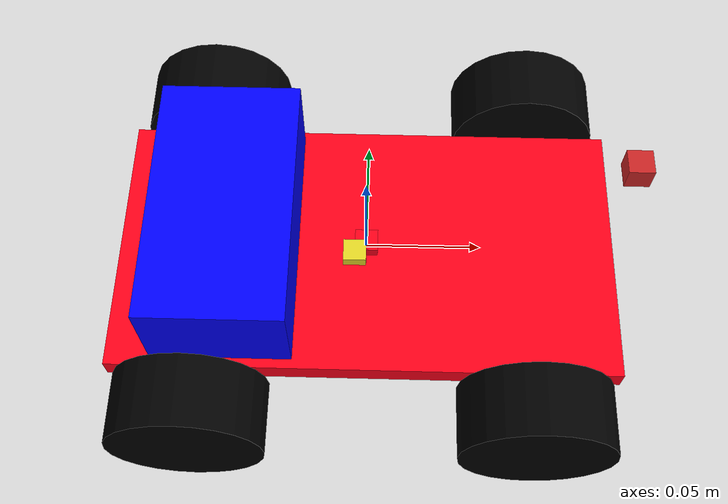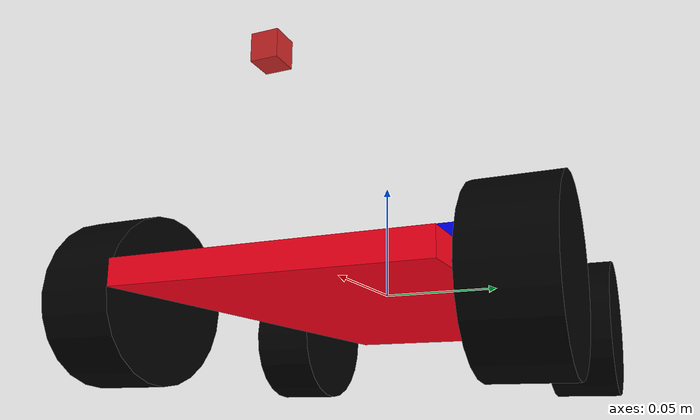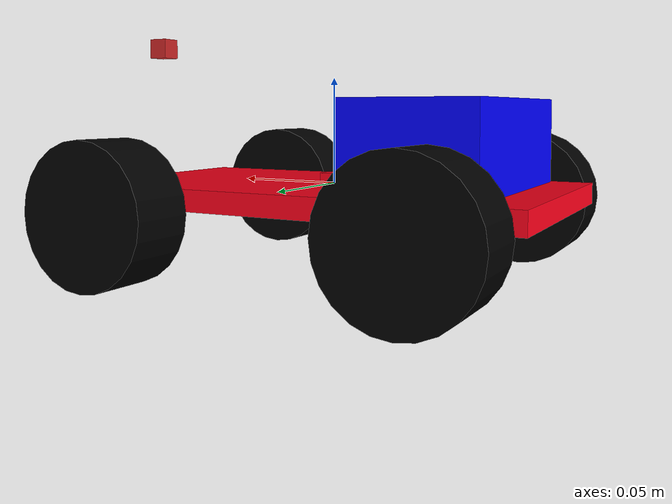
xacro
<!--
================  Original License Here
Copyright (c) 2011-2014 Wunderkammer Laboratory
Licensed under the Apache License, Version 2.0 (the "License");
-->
<?xml version="1.0"?>

<robot name="em_3905" xmlns:xacro="http://www.ros.org/wiki/xacro">
  <!-- Degree-to-radian conversions -->
  <xacro:property name="degrees_45" value="0.785398163"/>
  <xacro:property name="degrees_90" value="1.57079633"/>

  <!-- chassis_length is measured along the x axis, chassis_width
       along the y axis, and chassis_height along the z axis. -->
  <xacro:property name="chassis_length" value="0.218"/>
  <xacro:property name="chassis_width" value="0.118"/>
  <xacro:property name="chassis_height" value="0.01"/>
  <xacro:property name="chassis_mass" value="0.788"/>

  <xacro:property name="battery_x_offset" value="0.005"/>
  <xacro:property name="battery_dist" value="0.0"/>
  <xacro:property name="battery_comp_depth" value="0.0"/>
  <xacro:property name="battery_comp_angle" value="0.0"/>
  <xacro:property name="battery_length" value="0.06"/>
  <xacro:property name="battery_width" value="0.110"/>
  <xacro:property name="battery_height" value="0.04"/>
  <xacro:property name="battery_mass" value="0.0025"/>

  <xacro:property name="hub_dia" value="0.05652"/>
  <xacro:property name="tire_dia" value="0.06605"/>
  <xacro:property name="tire_width" value="0.03"/>
  <xacro:property name="hex_hub_depth" value="0.01445"/>
  <xacro:property name="wheel_mass" value="0.729"/>

  <xacro:property name="wheelbase" value="0.145"/>
  <xacro:property name="hex_hub_dist" value="0.155"/>
  <xacro:property name="axle_length" value="0.0"/>
  <xacro:property name="wheel_travel" value="0.000"/>
  <xacro:property name="shock_z_offset" value="0.01"/>

  <xacro:property name="shock_eff_limit" value="12.5106"/>
  <xacro:property name="shock_vel_limit" value="1000"/>

  <xacro:property name="axle_eff_limit" value="5.12766"/>
  <xacro:property name="axle_vel_limit" value="244.8696"/>

  <!-- These constants are used to simulate a Traxxas 2056 servo operated at
       6 V. servo_stall_torque is measured in N m. servo_no_load_speed is
       measured in rad/s. -->
  <xacro:property name="servo_stall_torque" value="0.5649"/>
  <xacro:property name="servo_no_load_speed" value="4.553"/>

  <!-- Property of IMU and camera -->
  <xacro:property name="imu_size" value="0.01"/>
  <xacro:property name="imu_height" value="0.01"/>

  <material name="battery_mat">
    <color rgba="0 0 1 1"/>
  </material>
  <material name="chassis_mat">
    <color rgba="1 0 0.1 1"/>
  </material>
  <material name="tire_mat">
    <color rgba="0 0 0 1"/>
  </material>

  <!-- Null inertial element. This is needed to make the model work with
       Gazebo. -->
  <xacro:macro name="null_inertial">
    <inertial>
      <mass value="0.001"/>
      <inertia ixx="0.001" ixy="0" ixz="0" iyy="0.001" iyz="0" izz="0.001"/>
    </inertial>
  </xacro:macro>

  <!-- Inertia of a solid cuboid. Width is measured along the x axis, depth
       along the y axis, and height along the z axis. -->
  <xacro:macro name="solid_cuboid_inertial"
               params="width depth height mass *origin">
    <inertial>
      <xacro:insert_block name="origin"/>
      <mass value="${mass}"/>
      <inertia ixx="${mass * (depth * depth + height * height) / 12}"
               ixy="0" ixz="0"
               iyy="${mass * (width * width + height * height) / 12}"
               iyz="0"
               izz="${mass * (width * width + depth * depth) / 12}"/>
    </inertial>
  </xacro:macro>

  <xacro:macro name="thick_walled_tube_inertial"
               params="inner_rad outer_rad height mass">
    <inertial>
      <mass value="${mass}"/>
      <inertia ixx="${(1 / 12) * mass * (3 * (inner_rad * inner_rad +
                    outer_rad * outer_rad) + height * height)}"
               ixy="0" ixz="0"
               iyy="${(1 / 12) * mass * (3 * (inner_rad * inner_rad +
                    outer_rad * outer_rad) + height * height)}"
               iyz="0"
               izz="${mass * (inner_rad * inner_rad +
                    outer_rad * outer_rad) / 2}"/>
    </inertial>
  </xacro:macro>

<!-- IMU -->
  <xacro:macro name="imu">
    <joint name="chassis_to_imu" type="fixed">
      <parent link="chassis"/>
      <child link="imu_link"/>
      <origin xyz="0
                   0
                   ${chassis_height / 2}"
              rpy="0 0 0"/>
    </joint>

    <link name="imu_link">
			<visual>
        <origin xyz="${-imu_size / 2} ${-imu_size / 2} ${-imu_height / 2}"/>
				<geometry>
				<box size="0.01 0.01 0.01"/>
				</geometry>
				<material name="yellow"/>
			</visual>

			<collision>
				<origin xyz="${-imu_size / 2} ${-imu_size / 2} ${imu_height / 2}"/>
				<geometry>
				<box size="0 0 0"/>
				</geometry>
			</collision>
    </link>
  </xacro:macro>

  <!-- Battery -->
  <xacro:macro name="battery" params="prefix reflect">
    <joint name="chassis_to_${prefix}_battery" type="fixed">
      <parent link="chassis"/>
      <child link="${prefix}_battery_offset"/>
      <origin xyz="${-battery_length }
                   ${-battery_width / 2}
                   0"
              rpy="${battery_comp_angle} 0 0"/>
    </joint>

    <link name="${prefix}_battery_offset">
      <xacro:null_inertial/>
    </link>

    <joint name="offset_to_${prefix}_battery" type="fixed">
      <parent link="${prefix}_battery_offset"/>
      <child link="${prefix}_battery"/>
      <origin xyz="0
                   ${ battery_width / 2}
                   ${(battery_height / 2) - battery_comp_depth}"/>
    </joint>

    <link name="${prefix}_battery">
      <visual>
        <geometry>
          <box size="${battery_length} ${battery_width} ${battery_height}"/>
        </geometry>
        <material name="battery_mat"/>
      </visual>

      <collision>
        <geometry>
          <box size="${battery_length} ${battery_width} ${battery_height}"/>
        </geometry>
      </collision>

      <xacro:solid_cuboid_inertial
         width="${battery_length}" depth="${battery_width}"
         height="${battery_height}" mass="${battery_mass}">
        <origin/>
      </xacro:solid_cuboid_inertial>
    </link>

    <gazebo reference="${prefix}_battery">
      <material>Gazebo/Blue</material>
    </gazebo>
  </xacro:macro>

  <!-- Shock absorber -->
  <xacro:macro name="shock"
               params="lr_prefix fr_prefix lr_reflect fr_reflect child">
    <joint name="${lr_prefix}_${fr_prefix}_shock" type="prismatic">
      <parent link="chassis"/>
      <child link="${child}"/>

      <origin xyz="${fr_reflect * wheelbase / 2}
                   ${lr_reflect * ((hex_hub_dist / 2) - axle_length)}
                   ${(wheel_travel / 2) - shock_z_offset}"/>
      <axis xyz="0 0 -1"/>
      <limit lower="${-wheel_travel / 2}" upper="${wheel_travel / 2}"
             effort="${shock_eff_limit}" velocity="${shock_vel_limit}"/>
    </joint>
    <transmission name="${lr_prefix}_${fr_prefix}_shock_trans">
      <type>transmission_interface/SimpleTransmission</type>
      <joint name="${lr_prefix}_${fr_prefix}_shock">
        <hardwareInterface>hardware_interface/EffortJointInterface</hardwareInterface>
      </joint>
      <actuator name="${lr_prefix}_${fr_prefix}_shock_act">
        <!-- This hardwareInterface element exists for compatibility
             with ROS Hydro. -->
        <hardwareInterface>hardware_interface/EffortJointInterface</hardwareInterface>
        <mechanicalReduction>1</mechanicalReduction>
      </actuator>
    </transmission>
  </xacro:macro>

  <!-- The "wheel" macro defines an axle carrier, axle, and wheel. -->
  <xacro:macro name="wheel" params="lr_prefix fr_prefix lr_reflect">
    <link name="${lr_prefix}_${fr_prefix}_axle_carrier">
      <xacro:null_inertial/>
    </link>

    <!-- The left and right axles have the same axis so that identical
         rotation values cause the wheels to rotate in the same direction. -->
    <joint name="${lr_prefix}_${fr_prefix}_axle" type="continuous">
      <parent link="${lr_prefix}_${fr_prefix}_axle_carrier"/>
      <child link="${lr_prefix}_${fr_prefix}_wheel"/>
      <origin rpy="${degrees_90} 0 0"/>
      <axis xyz="0 0 -1"/>
      <limit effort="${axle_eff_limit}" velocity="${axle_vel_limit}"/>
    </joint>
    <transmission name="${lr_prefix}_${fr_prefix}_axle_trans">
      <type>transmission_interface/SimpleTransmission</type>
      <joint name="${lr_prefix}_${fr_prefix}_axle">
        <hardwareInterface>hardware_interface/EffortJointInterface</hardwareInterface>
      </joint>
      <actuator name="${lr_prefix}_${fr_prefix}_axle_act">
        <!-- This hardwareInterface element exists for compatibility
             with ROS Hydro. -->
        <hardwareInterface>hardware_interface/EffortJointInterface</hardwareInterface>
        <mechanicalReduction>1</mechanicalReduction>
      </actuator>
    </transmission>

    <link name="${lr_prefix}_${fr_prefix}_wheel">
      <visual>
        <origin xyz="0
                     ${lr_reflect * (axle_length - (tire_width /
                     2 - hex_hub_depth))}
                     0"/>
        <geometry>
          <cylinder radius="${tire_dia / 2}" length="${tire_width}"/>
        </geometry>
        <material name="tire_mat"/>
      </visual>

      <collision>
        <origin xyz="0
                     ${lr_reflect * (axle_length - (tire_width /
                     2 - hex_hub_depth))}
                     0"/>
        <geometry>
          <cylinder radius="${tire_dia / 2}" length="${tire_width}"/>
        </geometry>
      </collision>

      <xacro:thick_walled_tube_inertial
          inner_rad="${hub_dia / 2}" outer_rad="${tire_dia / 2}"
          height="${tire_width}" mass="${wheel_mass}"/>
    </link>

    <gazebo reference="${lr_prefix}_${fr_prefix}_wheel">
      <material>Gazebo/Black</material>
    </gazebo>
  </xacro:macro>

  <!-- Front wheel -->
  <xacro:macro name="front_wheel"
               params="lr_prefix fr_prefix lr_reflect fr_reflect">
    <xacro:shock lr_prefix="${lr_prefix}" fr_prefix="${fr_prefix}"
                 lr_reflect="${lr_reflect}" fr_reflect="${fr_reflect}"
                 child="${lr_prefix}_steering_link"/>

    <link name="${lr_prefix}_steering_link">
      <xacro:null_inertial/>
    </link>

    <joint name="${lr_prefix}_steering_joint" type="revolute">
      <parent link="${lr_prefix}_steering_link"/>
      <child link="${lr_prefix}_${fr_prefix}_axle_carrier"/>
      <axis xyz="0 0 1"/>
      <limit lower="${-degrees_45}" upper="${degrees_45}"
             effort="${servo_stall_torque}" velocity="${servo_no_load_speed}"/>
    </joint>
    <transmission name="${lr_prefix}_steering_trans">
      <type>transmission_interface/SimpleTransmission</type>
      <joint name="${lr_prefix}_steering_joint">
        <hardwareInterface>hardware_interface/EffortJointInterface</hardwareInterface>
      </joint>
      <actuator name="${lr_prefix}_steering_act">
        <!-- This hardwareInterface element exists for compatibility
             with ROS Hydro. -->
        <hardwareInterface>hardware_interface/EffortJointInterface</hardwareInterface>
        <mechanicalReduction>1</mechanicalReduction>
      </actuator>
    </transmission>

    <xacro:wheel lr_prefix="${lr_prefix}" fr_prefix="${fr_prefix}"
                 lr_reflect="${lr_reflect}"/>
  </xacro:macro>

  <!-- Rear wheel -->
  <xacro:macro name="rear_wheel"
               params="lr_prefix fr_prefix lr_reflect fr_reflect">
    <xacro:shock lr_prefix="${lr_prefix}" fr_prefix="${fr_prefix}"
                 lr_reflect="${lr_reflect}" fr_reflect="${fr_reflect}"
                 child="${lr_prefix}_${fr_prefix}_axle_carrier"/>
    <xacro:wheel lr_prefix="${lr_prefix}" fr_prefix="${fr_prefix}"
                 lr_reflect="${lr_reflect}"/>
  </xacro:macro>

  <!-- base_link must have geometry so that its axes can be displayed in
       rviz. -->
  <link name="base_link">
    <inertial>
      <mass value="50" />
      <origin xyz="0 0 -1.25" />
      <inertia ixx="50.0" ixy="0.0" ixz="0.0"
        iyy="50.0" iyz="0.0"
        izz="50.0" />
    </inertial>
    <visual>
      <geometry>
        <box size="0.01 0.01 0.01"/>
      </geometry>
      <material name="chassis_mat"/>
    </visual>
  </link>
  <gazebo reference="base_link">
    <material>Gazebo/Grey</material>
  </gazebo>

  <!-- Chassis -->
  <link name="chassis">
    <visual>
      <origin xyz="0 0 ${-chassis_height / 2}"/>
      <geometry>
        <box size="${chassis_length} ${chassis_width} ${chassis_height}"/>
      </geometry>
      <material name="chassis_mat"/>
    </visual>

    <collision>
      <origin xyz="0 0 ${-chassis_height / 2}"/>
      <geometry>
        <box size="${chassis_length} ${chassis_width} ${chassis_height}"/>
      </geometry>
    </collision>

    <xacro:solid_cuboid_inertial
        width="${chassis_length}" depth="${chassis_width}"
        height="${chassis_height}" mass="${chassis_mass}">
      <origin xyz="0 0 ${-chassis_height / 2}"/>
    </xacro:solid_cuboid_inertial>
  </link>
  <gazebo reference="chassis">
    <material>Gazebo/WoodFloor</material>
  </gazebo>

  <joint name="base_link_to_chassis" type="fixed">
    <parent link="base_link"/>
    <child link="chassis"/>
  </joint>

  <!-- Batteries, IMU -->
  <xacro:battery prefix="left" reflect="0"/>
  <xacro:imu />

  <!-- Camera -->
  <joint name="chassis_to_camera" type="fixed">
    <parent link="chassis"/>
    <child link="camera_link"/>
    <origin xyz="${(chassis_length / 4)}
                 0
                 ${chassis_height}"
            rpy="0 0 0"/>
  </joint>
  <link name="camera_link">
    <collision>
      <origin xyz="${(chassis_length / 4)-0.005}
									 0
									 ${-chassis_height / 4 +0.06}"
							rpy="0 0 0"/>
      <geometry>
    <box size="0.01 0.01 0.01"/>
      </geometry>
    </collision>

    <visual>
      <origin xyz="${(chassis_length / 4) -0.005}
									 0
									 ${-chassis_height / 4 +0.06}"
							rpy="0 0 0"/>
      <geometry>
    <box size="0.01 0.01 0.01"/>
      </geometry>
      <material name="red"/>
    </visual>

    <inertial>
      <mass value="1e-5" />
      <origin xyz="0 0 0" rpy="0 0 0"/>
      <inertia ixx="1e-6" ixy="0" ixz="0" iyy="1e-6" iyz="0" izz="1e-6" />
    </inertial>
  </link>
  <gazebo reference="camera_link">
    <material>Gazebo/Red</material>
  </gazebo>

  <!-- Wheels -->
  <xacro:front_wheel lr_prefix="left" fr_prefix="front"
                     lr_reflect="1" fr_reflect="1"/>
  <xacro:front_wheel lr_prefix="right" fr_prefix="front"
                     lr_reflect="-1" fr_reflect="1"/>
  <xacro:rear_wheel lr_prefix="left" fr_prefix="rear"
                    lr_reflect="1" fr_reflect="-1"/>
  <xacro:rear_wheel lr_prefix="right" fr_prefix="rear"
                    lr_reflect="-1" fr_reflect="-1"/>

  <gazebo>
    <plugin name="gazebo_ros_control" filename="libgazebo_ros_control.so">
	<legacyModeNS>true</legacyModeNS>
    </plugin>
  </gazebo>

  <!-- IMU plugin -->
  <gazebo reference="imu_link">
        <gravity>true</gravity>
        <sensor name="imu_sensor" type="imu">
            <always_on>true</always_on>
            <update_rate>100</update_rate>
            <visualize>true</visualize>
            <topic>__default_topic__</topic>
            <plugin filename="libgazebo_ros_imu_sensor.so" name="imu_plugin">
                <topicName>imu</topicName>
                <bodyName>imu_link</bodyName>
                <updateRateHZ>100.0</updateRateHZ>
                <gaussianNoise>0.0</gaussianNoise>
                <xyzOffset>0 0 0</xyzOffset>
                <rpyOffset>0 0 0</rpyOffset>
                <frameName>imu_link</frameName>
            </plugin>
            <pose>0 0 0 0 0 0</pose>
        </sensor>
    </gazebo>

  <!-- camera Plugin -->
  <gazebo reference="camera_link">
    <sensor type="camera" name="camera1">
      <update_rate>10.0</update_rate>
      <camera name="head">
        <horizontal_fov>1.3962634</horizontal_fov>
        <image>
          <width>640</width>
          <height>480</height>
          <format>R8G8B8</format>
        </image>
        <clip>
          <near>0.02</near>
          <far>300</far>
        </clip>
        <noise>
          <type>gaussian</type>
          <!-- Noise is sampled independently per pixel on each frame.
               That pixel's noise value is added to each of its color
               channels, which at that point lie in the range [0,1]. -->
          <mean>0.0</mean>
          <stddev>0.007</stddev>
        </noise>
      </camera>
      <plugin name="camera_controller" filename="libgazebo_ros_camera.so">
        <alwaysOn>true</alwaysOn>
        <updateRate>0.0</updateRate>
        <cameraName>smartcar/camera1</cameraName>
        <imageTopicName>image_raw</imageTopicName>
        <cameraInfoTopicName>camera_info</cameraInfoTopicName>
        <frameName>camera_link</frameName>
        <hackBaseline>0.07</hackBaseline>
        <distortionK1>0.069086</distortionK1>
        <distortionK2>-0.089009</distortionK2>
        <distortionK3>0.007247</distortionK3>
        <distortionT1>0.009025</distortionT1>
        <distortionT2>0.0</distortionT2>
      </plugin>
    </sensor>
  </gazebo>

</robot>
